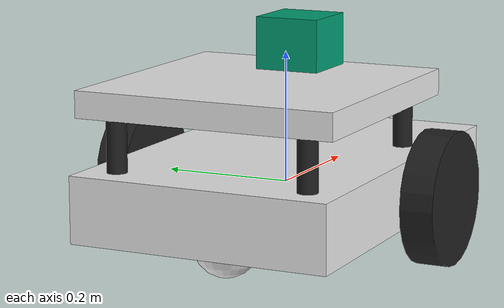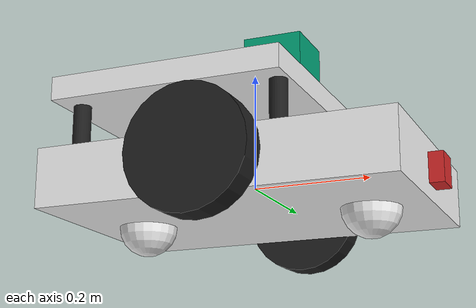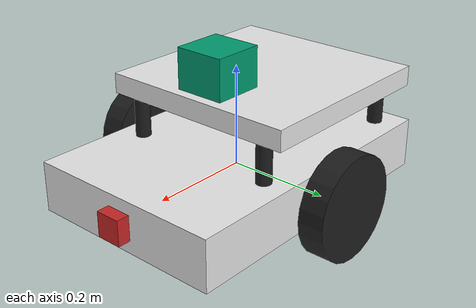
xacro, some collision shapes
<?xml version='1.0'?>

<robot name="my_robot" xmlns:xacro="http://www.ros.org/wiki/xacro">
  <xacro:include filename="$(find my_robot)/urdf/my_robot.gazebo" />
  <link name="robot_footprint"></link>

  <joint name="robot_footprint_joint" type="fixed">
    <origin xyz="0 0 0" rpy="0 0 0" />
    <parent link="robot_footprint" />
    <child link="chassis" />
  </joint>

                                                                    <!-- CHASSIS -->
  <link name="chassis">
    <pose>0 0 0.1 0 0 0</pose>

    <inertial>
      <mass value="15.0"/>
      <origin xyz="0.0 0 0" rpy="0 0 0" />
      <inertia
        ixx="0.1" ixy="0" ixz="0"
        iyy="0.1" iyz="0"
        izz="0.1"
      />
    </inertial>

    <collision name="collision">
      <origin xyz="0 0 0" rpy="0 0 0" />
      <geometry>
        <box size=".6 .4 .1" />
      </geometry>
    </collision>

    <visual name='chassis_visual'>
      <origin xyz="0 0 0" rpy="0 0 0" />
      <geometry>
        <box size=".6 .4 .1" />
      </geometry>
    </visual>

   <collision name="back_caster_collision">
      <origin xyz="-0.2 0 -0.05" rpy="0 0 0" />
      <geometry>
        <sphere radius="0.0499" />
      </geometry>
    </collision>

   <visual name="back_caster_visual">
      <origin xyz="-0.2 0 -0.05" rpy="0 0 0" />
      <geometry>
        <sphere radius="0.0499" />
      </geometry>
    </visual>

   <collision name="front_caster_collision">
      <origin xyz="0.2 0 -0.05" rpy="0 0 0" />
      <geometry>
        <sphere radius="0.0499" />
      </geometry>
    </collision>

   <visual name="front_caster_visual">
      <origin xyz="0.2 0 -0.05" rpy="0 0 0" />
      <geometry>
        <sphere radius="0.0499" />
      </geometry>
    </visual>
  </link>

                                                                <!-- LEFT WHEEL -->
  <link name="left_wheel">
    <inertial>
        <mass value="5" />
        <origin xyz="0 0 0" rpy="0 1.5707 1.5707" />
        <inertia
            ixx="0.1" ixy="0" ixz="0"
            iyy="0.1" iyz="0"
            izz="0.1" />
        </inertial>
    <visual name="left_wheel_visual">
        <origin xyz="0 0 0" rpy="0 1.5707 1.5707"/>
        <geometry>
            <cylinder radius="0.1" length="0.05" />
        </geometry>
    </visual>
    <collision name="left_wheel_collision">
        <origin xyz="0 0 0" rpy="0 1.5707 1.5707"/>
        <geometry>
            <cylinder radius="0.1" length="0.05" />
        </geometry>
    </collision>
  </link>
                                                                <!--RIGHT WHEEL -->
  <link name="right_wheel">
    <inertial>
        <mass value="5" />
        <origin xyz="0 0 0" rpy="0 1.5707 1.5707" />
        <inertia
            ixx="0.1" ixy="0" ixz="0"
            iyy="0.1" iyz="0"
            izz="0.1" />
        </inertial>
    <visual name="right_wheel_visual">
        <origin xyz="0 0 0" rpy="0 1.5707 1.5707"/>
        <geometry>
            <cylinder radius="0.1" length="0.05" />
        </geometry>
    </visual>
    <collision name="right_wheel_collision">
        <origin xyz="0 0 0" rpy="0 1.5707 1.5707"/>
        <geometry>
            <cylinder radius="0.1" length="0.05" />
        </geometry>
    </collision>
  </link>

<link name="lf_support">
    <inertial>
        <mass value="0.5" />
        <origin xyz="0 0 0" rpy="0 0 0" />
        <inertia
            ixx="0.1" ixy="0" ixz="0"
            iyy="0.1" iyz="0"
            izz="0.1" />
        </inertial>
    <visual name="lf_support_visual">
        <origin xyz="0 0 0" rpy="0 0 0"/>
        <geometry>
            <cylinder radius="0.015" length="0.12" />
        </geometry>
    </visual>
    <collision name="lf_support_collision">
        <origin xyz="0 0 0" rpy="0 0 0"/>
        <geometry>
            <cylinder radius="0.015" length="0.12" />
        </geometry>
    </collision>
  </link>

  <joint type="fixed" name="lf_d_support_joint">
      <origin xyz="0.1 0.15 0.1" rpy="0 0 0" />
      <child link="lf_support" />
      <parent link="chassis" />
      <axis xyz="0 0 0" rpy="0 0 0" />
  </joint>

<link name="lb_support">
    <inertial>
        <mass value="0.5" />
        <origin xyz="0 0 0" rpy="0 0 0" />
        <inertia
            ixx="0.1" ixy="0" ixz="0"
            iyy="0.1" iyz="0"
            izz="0.1" />
        </inertial>
    <visual name="lb_support_visual">
        <origin xyz="0 0 0" rpy="0 0 0"/>
        <geometry>
            <cylinder radius="0.015" length="0.12" />
        </geometry>
    </visual>
    <collision name="lb_support_collision">
        <origin xyz="0 0 0" rpy="0 0 0"/>
        <geometry>
            <cylinder radius="0.015" length="0.12" />
        </geometry>
    </collision>
  </link>

  <joint type="fixed" name="lb_d_support_joint">
      <origin xyz="-0.25 0.15 0.1" rpy="0 0 0" />
      <child link="lb_support" />
      <parent link="chassis" />
      <axis xyz="0 0 0" rpy="0 0 0" />
  </joint>

<link name="rf_support">
    <inertial>
        <mass value="0.5" />
        <origin xyz="0 0 0" rpy="0 0 0" />
        <inertia
            ixx="0.1" ixy="0" ixz="0"
            iyy="0.1" iyz="0"
            izz="0.1" />
        </inertial>
    <visual name="rf_support_visual">
        <origin xyz="0 0 0" rpy="0 0 0"/>
        <geometry>
            <cylinder radius="0.015" length="0.12" />
        </geometry>
    </visual>
    <collision name="rf_support_collision">
        <origin xyz="0 0 0" rpy="0 0 0"/>
        <geometry>
            <cylinder radius="0.015" length="0.12" />
        </geometry>
    </collision>
  </link>

  <joint type="fixed" name="rf_d_support_joint">
      <origin xyz="0.1 -0.15 0.1" rpy="0 0 0" />
      <child link="rf_support" />
      <parent link="chassis" />
      <axis xyz="0 0 0" rpy="0 0 0" />
  </joint>

<link name="rb_support">
    <inertial>
        <mass value="0.5" />
        <origin xyz="0 0 0" rpy="0 0 0" />
        <inertia
            ixx="0.1" ixy="0" ixz="0"
            iyy="0.1" iyz="0"
            izz="0.1" />
        </inertial>
    <visual name="rb_support_visual">
        <origin xyz="0 0 0" rpy="0 0 0"/>
        <geometry>
            <cylinder radius="0.015" length="0.12" />
        </geometry>
    </visual>
    <collision name="rb_support_collision">
        <origin xyz="0 0 0" rpy="0 0 0"/>
        <geometry>
            <cylinder radius="0.015" length="0.12" />
        </geometry>
    </collision>
  </link>

  <joint type="fixed" name="rb_d_support_joint">
      <origin xyz="-0.25 -0.15 0.1" rpy="0 0 0" />
      <child link="rb_support" />
      <parent link="chassis" />
      <axis xyz="0 0 0" rpy="0 0 0" />
  </joint>

<link name="upper_chassis">
    <pose>0 0 0.1 0 0 0</pose>

    <inertial>
      <mass value="5.0"/>
      <origin xyz="0.0 0 0" rpy="0 0 0" />
      <inertia
        ixx="0.1" ixy="0" ixz="0"
        iyy="0.1" iyz="0"
        izz="0.1"
      />
    </inertial>

    <collision name="upper_chassis_collision">
      <origin xyz="0 0 0" rpy="0 0 0" />
      <geometry>
        <box size=".4 .4 .04" />
      </geometry>
    </collision>

    <visual name='upper_chassis_visual'>
      <origin xyz="0 0 0" rpy="0 0 0" />
      <geometry>
        <box size=".4 .4 .04" />
      </geometry>
    </visual>
  </link>

  <joint type="fixed" name="lf_u_support">
      <origin xyz="-0.08 0 0.15" rpy="0 0 0" />
      <child link="upper_chassis" />
      <parent link="chassis" />
      <axis xyz="0 1 0" rpy="0 0 0" />
  </joint>

  <link name="camera">
      <inertial>
          <mass value="0.1" />
          <origin xyz="0 0 0" rpy="0 0 0" />
          <inertia
              ixx="1e-6" ixy="0" ixz="0"
              iyy="1e-6" iyz="0"
              izz="1e-6"
            />
      </inertial>

      <visual name="camera_visual">
          <origin xyz="0 0 0" rpy="0 0 0"/>
          <geometry>
              <box size="0.05 0.05 0.05" />
          </geometry>
      </visual>

      <collision name="camera_collision">
          <origin xyz="0 0 0" rpy="0 0 0"/>
          <geometry>
              <box size="0.05 0.05 0.05" />
          </geometry>
      </collision>

  </link>

  <link name="hokuyo">
      <inertial>
          <mass value="1e-5" />
          <origin xyz="0 0 0" rpy="0 0 0" />
          <inertia
              ixx="1e-6" ixy="0" ixz="0"
              iyy="1e-6" iyz="0"
              izz="1e-6"
              />
      </inertial>
      <visual name="hokuyo_visual" >
          <origin xyz="0 0 0" rpy="0 0 0" />
          <geometry>
              <mesh filename="package://my_robot/meshes/hokuyo.dae" />
          </geometry>
      </visual>
      <collision name="hokuyo_collision">
          <origin xyz="0 0 0" rpy="0 0 0" />
              <geometry>
                  <box size="0.1 0.1 0.1" />
              </geometry>
      </collision>
  </link>
  <joint type="continuous" name="left_wheel_hinge">
      <origin xyz="0 0.25 0" rpy="0 0 0" />
      <child link="left_wheel" />
      <parent link="chassis" />
      <axis xyz="0 1 0" rpy="0 0 0" />
      <limit effort="10000" velocity="1000" />
      <dynamics damping="1.0" friction="1.0" />
  </joint>

  <joint type="continuous" name="right_wheel_hinge">
      <origin xyz="0 -0.25 0" rpy="0 0 0" />
      <child link="right_wheel" />
      <parent link="chassis" />
      <axis xyz="0 1 0" rpy="0 0 0" />
      <limit effort="10000" velocity="1000" />
      <dynamics damping="1.0" friction="1.0" />
  </joint>

  <joint type="fixed" name="camera_joint">
      <origin xyz="0.3 0 0" rpy="0 0 0" />
      <child link="camera" />
      <parent link="chassis" />
      <axis xyz="0 1 0" rpy="0 0 0" />
  </joint>

  <joint type="fixed" name="hokuyo_joint">
      <origin xyz="0.05 0 0.2" rpy="0 0 0" />
      <child link="hokuyo" />
      <parent link="chassis" />
      <axis xyz="0 1 0" rpy="0 0 0" />
  </joint>

  <gazebo reference="left_wheel">
    <material>Gazebo/Black</material>
  </gazebo>
  <gazebo reference="right_wheel">
    <material>Gazebo/Black</material>
  </gazebo>
  <gazebo reference="chassis">
    <material>Gazebo/White</material>
  </gazebo>
  <gazebo reference="lf_support">
    <material>Gazebo/Black</material>
  </gazebo>
  <gazebo reference="lb_support">
    <material>Gazebo/Black</material>
  </gazebo>
  <gazebo reference="rb_support">
    <material>Gazebo/Black</material>
  </gazebo>
  <gazebo reference="rf_support">
    <material>Gazebo/Black</material>
  </gazebo>
  <gazebo reference="upper_chassis">
    <material>Gazebo/White</material>
  </gazebo>
  <gazebo reference="camera">
    <material>Gazebo/Red</material>
  </gazebo>
</robot>
